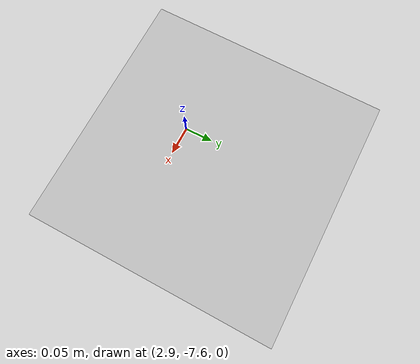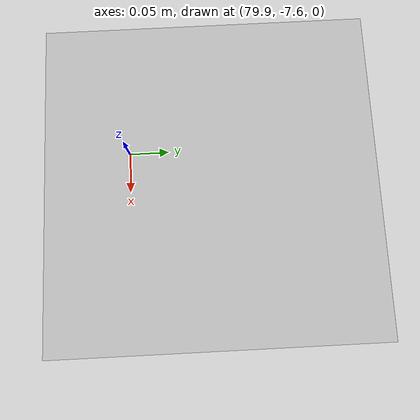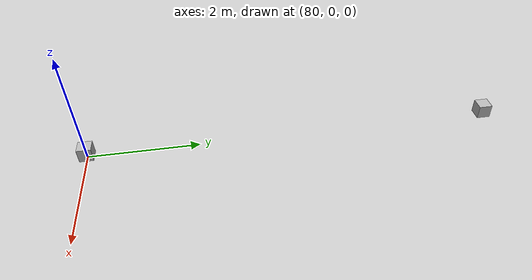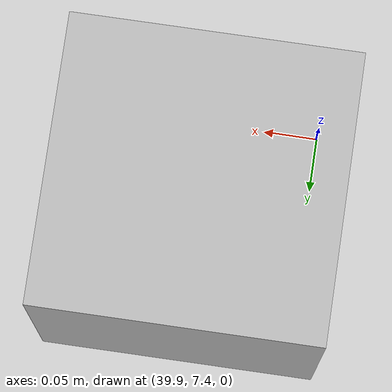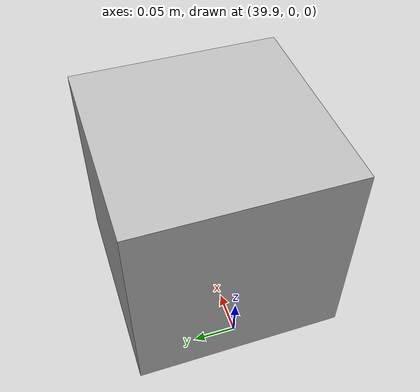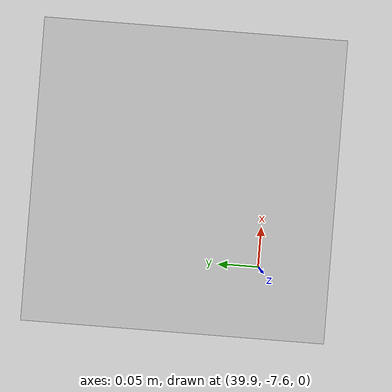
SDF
<?xml version="1.0" ?>
<sdf version="1.6">

  <world name="default">

    <include>
      <uri>model://ground_plane</uri>
    </include>

      <include>
         <uri>model://sun</uri>
      </include>

      <model name='box_1'>
	<link name='base_1'>
	  <pose frame=''>0 0 0 0 0 0</pose>
	  <inertial>
	    <pose frame=''>3 7.5 0.125 0 0 0</pose>
	    <mass>1</mass>
	    <inertia>
	      <ixx>1</ixx>
	      <ixy>0</ixy>
	      <ixz>0</ixz>
	      <iyy>1</iyy>
	      <iyz>0</iyz>
	      <izz>1</izz>
	    </inertia>
	  </inertial>
	  <collision name='base_1_collision'>
	    <pose frame=''>3 7.5 0.125 0 0 0</pose>
	    <geometry>
	      <box>
		<size>0.25 0.25 0.25</size>
	      </box>
	    </geometry>
	  </collision>
	  <visual name='base_1_visual'>
	    <pose frame=''>3 7.5 0.125 0 0 0</pose>
	    <geometry>
	      <box>
		<size>0.25 0.25 0.25</size>
	      </box>
	    </geometry>
</visual>
	</link>
      </model>

      <model name='box_2'>
	<link name='base_2'>
	  <pose frame=''>0 0 0 0 0 0</pose>
	  <inertial>
	    <pose frame=''>3 0 0.125 0 0 0</pose>
	    <mass>1</mass>
	    <inertia>
	      <ixx>1</ixx>
	      <ixy>0</ixy>
	      <ixz>0</ixz>
	      <iyy>1</iyy>
	      <iyz>0</iyz>
	      <izz>1</izz>
	    </inertia>
	  </inertial>
	  <collision name='base_2_collision'>
	    <pose frame=''>3 0 0.125 0 0 0</pose>
	    <geometry>
	      <box>
		<size>0.25 0.25 0.25</size>
	      </box>
	    </geometry>
	  </collision>
	  <visual name='base_2_visual'>
	    <pose frame=''>3 0 0.125 0 0 0</pose>
	    <geometry>
	      <box>
		<size>0.25 0.25 0.25</size>
	      </box>
	    </geometry>
</visual>
	</link>
	 </model>

      <model name='box_3'>
	<link name='base_3'>
	  <pose frame=''>0 0 0 0 0 0</pose>
	  <inertial>
	    <pose frame=''>3 -7.5 0.125 0 0 0</pose>
	    <mass>1</mass>
	    <inertia>
	      <ixx>1</ixx>
	      <ixy>0</ixy>
	      <ixz>0</ixz>
	      <iyy>1</iyy>
	      <iyz>0</iyz>
	      <izz>1</izz>
	    </inertia>
	  </inertial>
	  <collision name='base_3_collision'>
	    <pose frame=''>3 -7.5 0.125 0 0 0</pose>
	    <geometry>
	      <box>
		<size>0.25 0.25 0.25</size>
	      </box>
	    </geometry>
	  </collision>
	  <visual name='base_3_visual'>
	    <pose frame=''>3 -7.5 0.125 0 0 0</pose>
	    <geometry>
	      <box>
		<size>0.25 0.25 0.25</size>
	      </box>
	    </geometry>
</visual>
	</link>
	 </model>

	 <model name='box_4'>
	<link name='base_4'>
	  <pose frame=''>0 0 0 0 0 0</pose>
	  <inertial>
	    <pose frame=''>40 7.5 0.125 0 0 0</pose>
	    <mass>1</mass>
	    <inertia>
	      <ixx>1</ixx>
	      <ixy>0</ixy>
	      <ixz>0</ixz>
	      <iyy>1</iyy>
	      <iyz>0</iyz>
	      <izz>1</izz>
	    </inertia>
	  </inertial>
	  <collision name='base_4_collision'>
	    <pose frame=''>40 7.5 0.125 0 0 0</pose>
	    <geometry>
	      <box>
		<size>0.25 0.25 0.25</size>
	      </box>
	    </geometry>
	  </collision>
	  <visual name='base_4_visual'>
	    <pose frame=''>40 7.5 0.125 0 0 0</pose>
	    <geometry>
	      <box>
		<size>0.25 0.25 0.25</size>
	      </box>
	    </geometry>
</visual>
	</link>
      </model>

      <model name='box_5'>
	<link name='base_5'>
	  <pose frame=''>0 0 0 0 0 0</pose>
	  <inertial>
	    <pose frame=''>40 0 0.125 0 0 0</pose>
	    <mass>1</mass>
	    <inertia>
	      <ixx>1</ixx>
	      <ixy>0</ixy>
	      <ixz>0</ixz>
	      <iyy>1</iyy>
	      <iyz>0</iyz>
	      <izz>1</izz>
	    </inertia>
	  </inertial>
	  <collision name='base_5_collision'>
	    <pose frame=''>40 0 0.125 0 0 0</pose>
	    <geometry>
	      <box>
		<size>0.25 0.25 0.25</size>
	      </box>
	    </geometry>
	  </collision>
	  <visual name='base_5_visual'>
	    <pose frame=''>40 0 0.125 0 0 0</pose>
	    <geometry>
	      <box>
		<size>0.25 0.25 0.25</size>
	      </box>
	    </geometry>
</visual>
	</link>
	 </model>

      <model name='box_6'>
	<link name='base_6'>
	  <pose frame=''>0 0 0 0 0 0</pose>
	  <inertial>
	    <pose frame=''>40 -7.5 0.125 0 0 0</pose>
	    <mass>1</mass>
	    <inertia>
	      <ixx>1</ixx>
	      <ixy>0</ixy>
	      <ixz>0</ixz>
	      <iyy>1</iyy>
	      <iyz>0</iyz>
	      <izz>1</izz>
	    </inertia>
	  </inertial>
	  <collision name='base_6_collision'>
	    <pose frame=''>40 -7.5 0.125 0 0 0</pose>
	    <geometry>
	      <box>
		<size>0.25 0.25 0.25</size>
	      </box>
	    </geometry>
	  </collision>
	  <visual name='base_6_visual'>
	    <pose frame=''>40 -7.5 0.125 0 0 0</pose>
	    <geometry>
	      <box>
		<size>0.25 0.25 0.25</size>
	      </box>
	    </geometry>
</visual>
	</link>
	 </model>

      <model name='box_7'>
	<link name='base_7'>
	  <pose frame=''>0 0 0 0 0 0</pose>
	  <inertial>
	    <pose frame=''>80 7.5 0.125 0 0 0</pose>
	    <mass>1</mass>
	    <inertia>
	      <ixx>1</ixx>
	      <ixy>0</ixy>
	      <ixz>0</ixz>
	      <iyy>1</iyy>
	      <iyz>0</iyz>
	      <izz>1</izz>
	    </inertia>
	  </inertial>
	  <collision name='base_7_collision'>
	    <pose frame=''>80 7.5 0.125 0 0 0</pose>
	    <geometry>
	      <box>
		<size>0.25 0.25 0.25</size>
	      </box>
	    </geometry>
	  </collision>
	  <visual name='base_7_visual'>
	    <pose frame=''>80 7.5 0.125 0 0 0</pose>
	    <geometry>
	      <box>
		<size>0.25 0.25 0.25</size>
	      </box>
	    </geometry>
	  </visual>
	</link>
	 </model>

	<model name='box_8'>
	<link name='base_8'>
	  <pose frame=''>0 0 0 0 0 0</pose>
	  <inertial>
	    <pose frame=''>80 0 0.125 0 0 0</pose>
	    <mass>1</mass>
	    <inertia>
	      <ixx>1</ixx>
	      <ixy>0</ixy>
	      <ixz>0</ixz>
	      <iyy>1</iyy>
	      <iyz>0</iyz>
	      <izz>1</izz>
	    </inertia>
	  </inertial>
	  <collision name='base_8_collision'>
	    <pose frame=''>80 0 0.125 0 0 0</pose>
	    <geometry>
	      <box>
		<size>0.25 0.25 0.25</size>
	      </box>
	    </geometry>
	  </collision>
	  <visual name='base_8_visual'>
	    <pose frame=''>80 0 0.125 0 0 0</pose>
	    <geometry>
	      <box>
		<size>0.25 0.25 0.25</size>
	      </box>
	    </geometry>
	  </visual>
	</link>
	</model>

	<model name='box_9'>
	<link name='base_9'>
	  <pose frame=''>0 0 0 0 0 0</pose>
	  <inertial>
	    <pose frame=''>80 -7.5 0.125 0 0 0</pose>
	    <mass>1</mass>
	    <inertia>
	      <ixx>1</ixx>
	      <ixy>0</ixy>
	      <ixz>0</ixz>
	      <iyy>1</iyy>
	      <iyz>0</iyz>
	      <izz>1</izz>
	    </inertia>
	  </inertial>
	  <collision name='base_9_collision'>
	    <pose frame=''>80 -7.5 0.125 0 0 0</pose>
	    <geometry>
	      <box>
		<size>0.25 0.25 0.25</size>
	      </box>
	    </geometry>
	  </collision>
	  <visual name='base_9_visual'>
	    <pose frame=''>80 -7.5 0.125 0 0 0</pose>
	    <geometry>
	      <box>
		<size>0.25 0.25 0.25</size>
	      </box>
	    </geometry>
	  </visual>
	</link>
	</model>

   </world>
</sdf>
